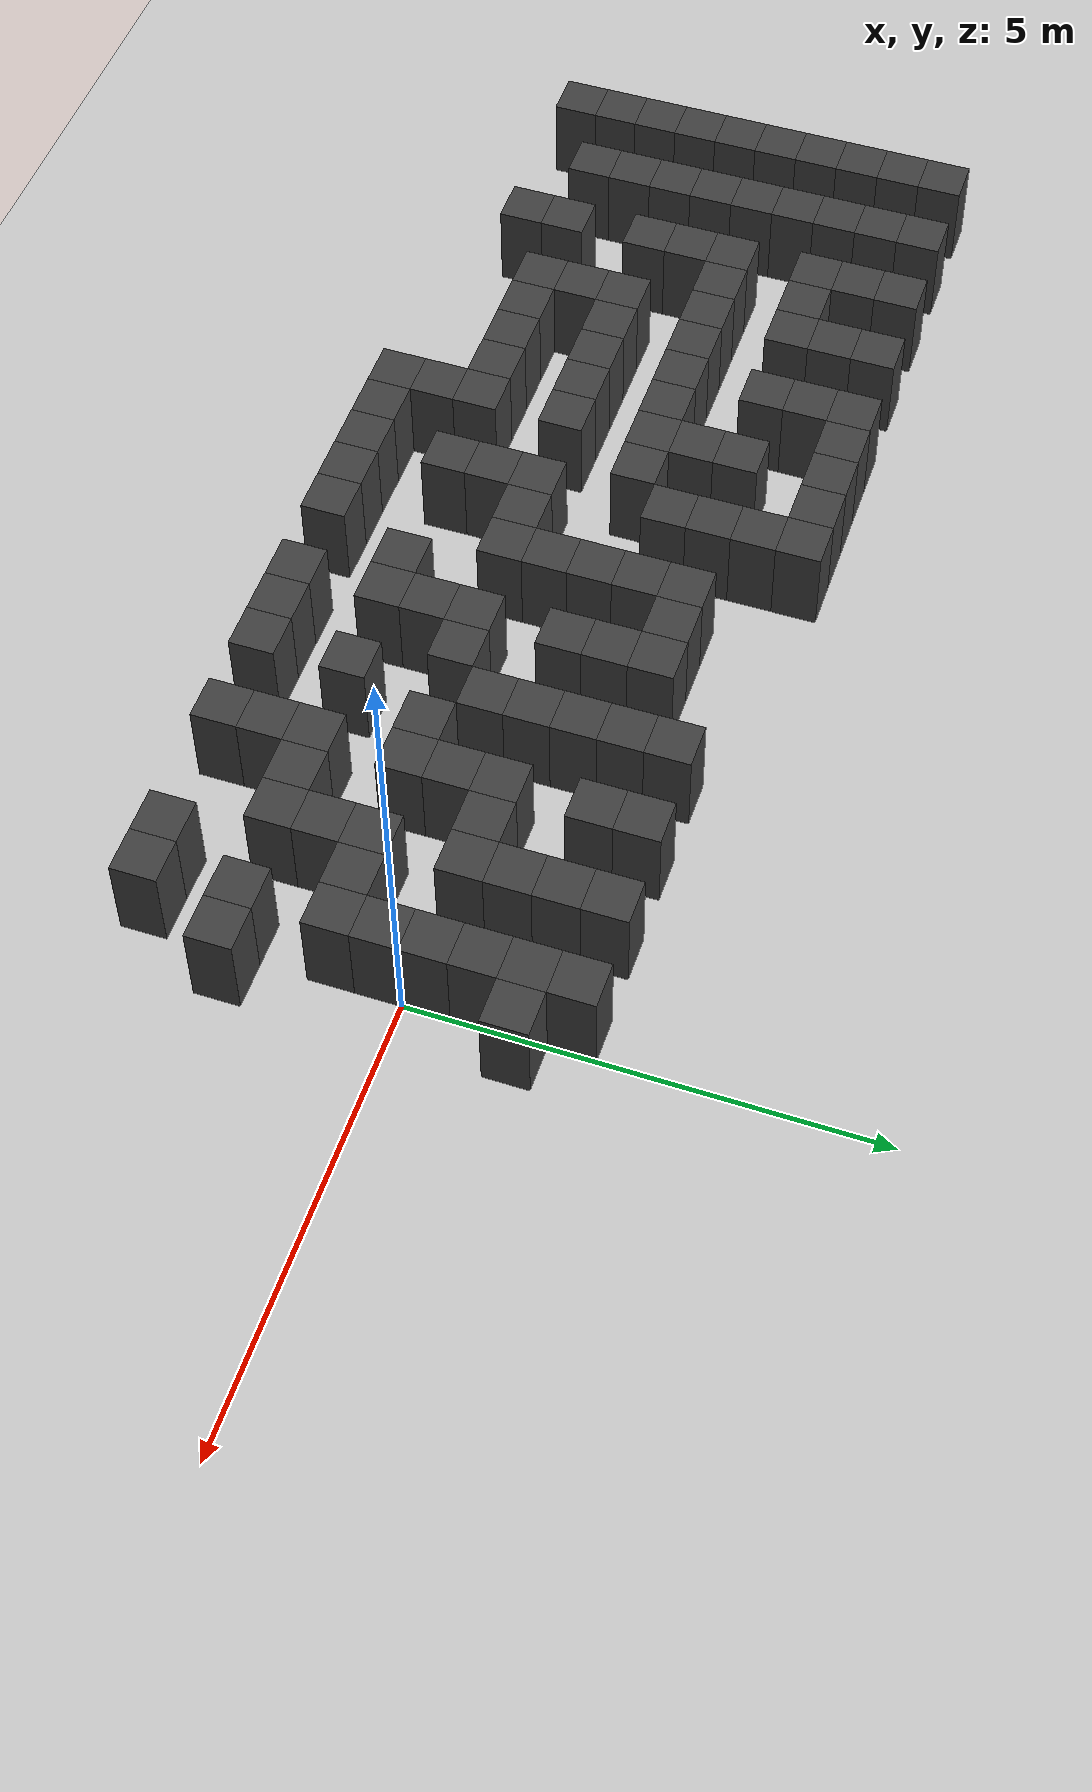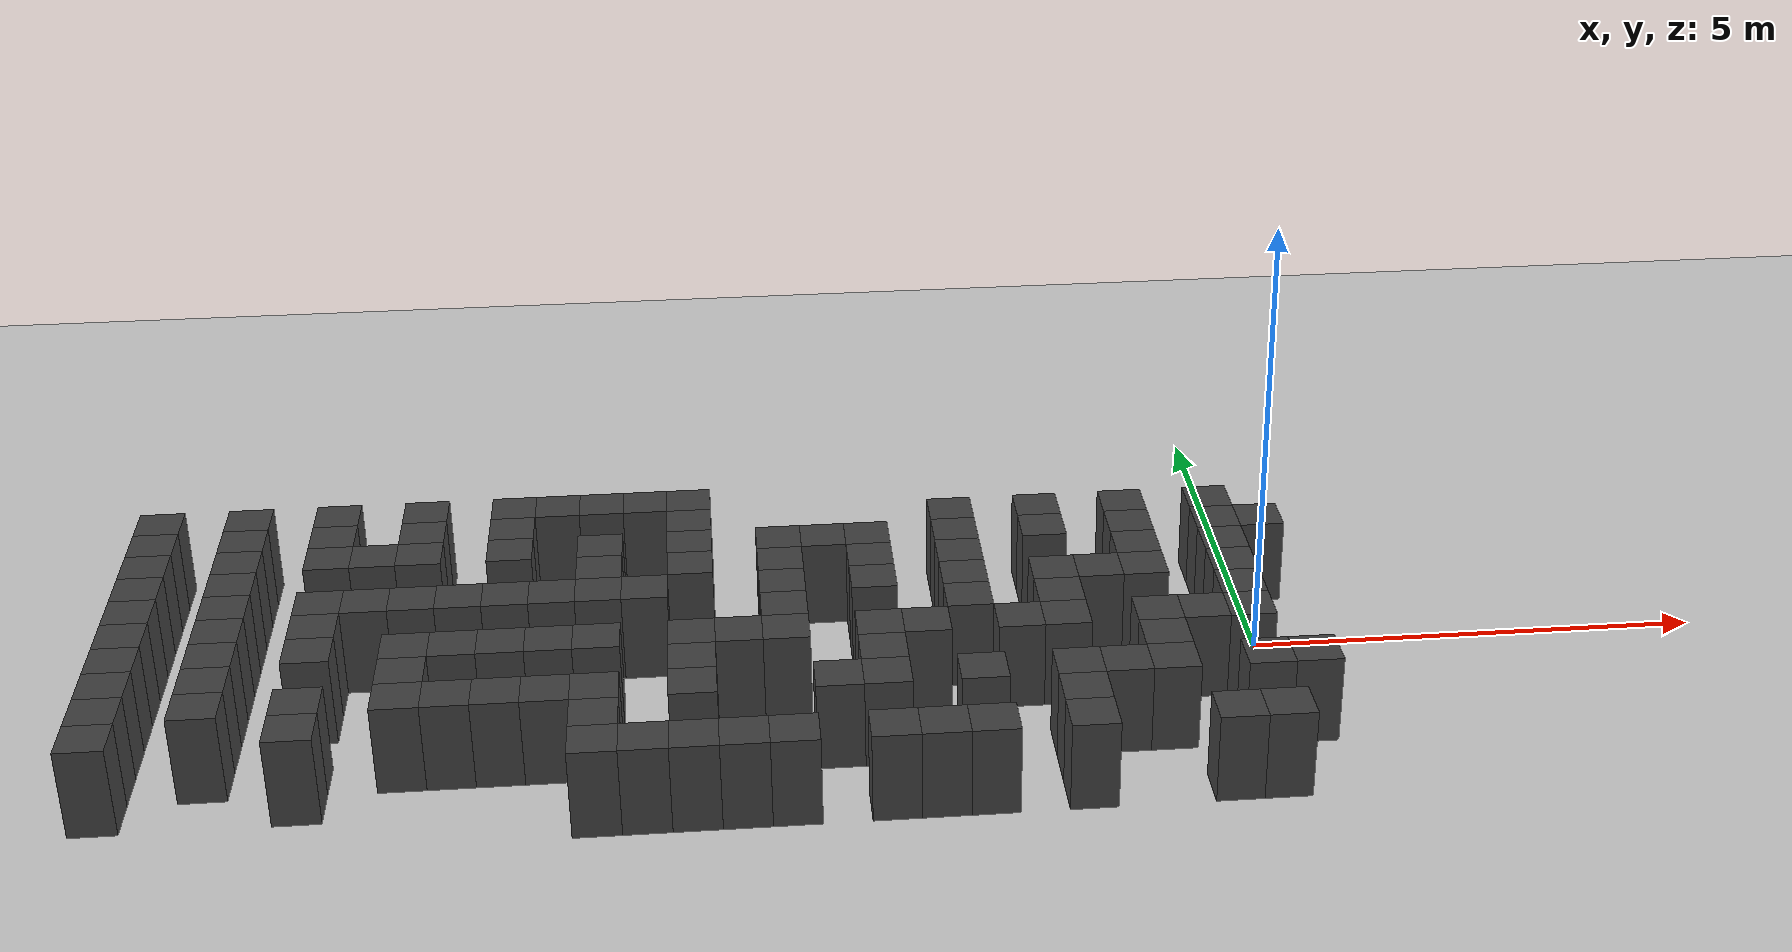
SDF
<sdf version="1.7">
 <world name="map_16588">
  <model name="ground_plane">
   <static>true</static>
   <link name="link">
    <collision name="collision">
     <geometry><plane><normal>0 0 1</normal><size>200 200</size></plane></geometry>
    </collision>
    <visual name="visual">
     <geometry><plane><normal>0 0 1</normal><size>200 200</size></plane></geometry>
     <material><ambient>0.8 0.8 0.8 1</ambient><diffuse>0.8 0.8 0.8 1</diffuse></material>
    </visual>
   </link>
  </model>
  <model name="maze_environment">
   <static>true</static>
   <link name="wall_483">
    <pose>-12.250 2.250 0.500 0 0 0</pose>
    <collision name="col"><geometry><box><size>0.5 0.5 1.0</size></box></geometry></collision>
    <visual name="vis">
     <geometry><box><size>0.5 0.5 1.0</size></box></geometry>
     <material><ambient>0.15 0.15 0.15 1</ambient><diffuse>0.25 0.25 0.25 1</diffuse></material>
    </visual>
   </link>
   <link name="wall_484">
    <pose>-11.250 2.250 0.500 0 0 0</pose>
    <collision name="col"><geometry><box><size>0.5 0.5 1.0</size></box></geometry></collision>
    <visual name="vis">
     <geometry><box><size>0.5 0.5 1.0</size></box></geometry>
     <material><ambient>0.15 0.15 0.15 1</ambient><diffuse>0.25 0.25 0.25 1</diffuse></material>
    </visual>
   </link>
   <link name="wall_485">
    <pose>-10.250 2.250 0.500 0 0 0</pose>
    <collision name="col"><geometry><box><size>0.5 0.5 1.0</size></box></geometry></collision>
    <visual name="vis">
     <geometry><box><size>0.5 0.5 1.0</size></box></geometry>
     <material><ambient>0.15 0.15 0.15 1</ambient><diffuse>0.25 0.25 0.25 1</diffuse></material>
    </visual>
   </link>
   <link name="wall_486">
    <pose>-9.250 2.250 0.500 0 0 0</pose>
    <collision name="col"><geometry><box><size>0.5 0.5 1.0</size></box></geometry></collision>
    <visual name="vis">
     <geometry><box><size>0.5 0.5 1.0</size></box></geometry>
     <material><ambient>0.15 0.15 0.15 1</ambient><diffuse>0.25 0.25 0.25 1</diffuse></material>
    </visual>
   </link>
   <link name="wall_487">
    <pose>-8.250 2.250 0.500 0 0 0</pose>
    <collision name="col"><geometry><box><size>0.5 0.5 1.0</size></box></geometry></collision>
    <visual name="vis">
     <geometry><box><size>0.5 0.5 1.0</size></box></geometry>
     <material><ambient>0.15 0.15 0.15 1</ambient><diffuse>0.25 0.25 0.25 1</diffuse></material>
    </visual>
   </link>
   <link name="wall_488">
    <pose>-7.750 2.250 0.500 0 0 0</pose>
    <collision name="col"><geometry><box><size>0.5 0.5 1.0</size></box></geometry></collision>
    <visual name="vis">
     <geometry><box><size>0.5 0.5 1.0</size></box></geometry>
     <material><ambient>0.15 0.15 0.15 1</ambient><diffuse>0.25 0.25 0.25 1</diffuse></material>
    </visual>
   </link>
   <link name="wall_489">
    <pose>-7.250 2.250 0.500 0 0 0</pose>
    <collision name="col"><geometry><box><size>0.5 0.5 1.0</size></box></geometry></collision>
    <visual name="vis">
     <geometry><box><size>0.5 0.5 1.0</size></box></geometry>
     <material><ambient>0.15 0.15 0.15 1</ambient><diffuse>0.25 0.25 0.25 1</diffuse></material>
    </visual>
   </link>
   <link name="wall_490">
    <pose>-6.750 2.250 0.500 0 0 0</pose>
    <collision name="col"><geometry><box><size>0.5 0.5 1.0</size></box></geometry></collision>
    <visual name="vis">
     <geometry><box><size>0.5 0.5 1.0</size></box></geometry>
     <material><ambient>0.15 0.15 0.15 1</ambient><diffuse>0.25 0.25 0.25 1</diffuse></material>
    </visual>
   </link>
   <link name="wall_491">
    <pose>-6.250 2.250 0.500 0 0 0</pose>
    <collision name="col"><geometry><box><size>0.5 0.5 1.0</size></box></geometry></collision>
    <visual name="vis">
     <geometry><box><size>0.5 0.5 1.0</size></box></geometry>
     <material><ambient>0.15 0.15 0.15 1</ambient><diffuse>0.25 0.25 0.25 1</diffuse></material>
    </visual>
   </link>
   <link name="wall_517">
    <pose>-12.250 1.750 0.500 0 0 0</pose>
    <collision name="col"><geometry><box><size>0.5 0.5 1.0</size></box></geometry></collision>
    <visual name="vis">
     <geometry><box><size>0.5 0.5 1.0</size></box></geometry>
     <material><ambient>0.15 0.15 0.15 1</ambient><diffuse>0.25 0.25 0.25 1</diffuse></material>
    </visual>
   </link>
   <link name="wall_518">
    <pose>-11.250 1.750 0.500 0 0 0</pose>
    <collision name="col"><geometry><box><size>0.5 0.5 1.0</size></box></geometry></collision>
    <visual name="vis">
     <geometry><box><size>0.5 0.5 1.0</size></box></geometry>
     <material><ambient>0.15 0.15 0.15 1</ambient><diffuse>0.25 0.25 0.25 1</diffuse></material>
    </visual>
   </link>
   <link name="wall_519">
    <pose>-10.250 1.750 0.500 0 0 0</pose>
    <collision name="col"><geometry><box><size>0.5 0.5 1.0</size></box></geometry></collision>
    <visual name="vis">
     <geometry><box><size>0.5 0.5 1.0</size></box></geometry>
     <material><ambient>0.15 0.15 0.15 1</ambient><diffuse>0.25 0.25 0.25 1</diffuse></material>
    </visual>
   </link>
   <link name="wall_520">
    <pose>-9.250 1.750 0.500 0 0 0</pose>
    <collision name="col"><geometry><box><size>0.5 0.5 1.0</size></box></geometry></collision>
    <visual name="vis">
     <geometry><box><size>0.5 0.5 1.0</size></box></geometry>
     <material><ambient>0.15 0.15 0.15 1</ambient><diffuse>0.25 0.25 0.25 1</diffuse></material>
    </visual>
   </link>
   <link name="wall_521">
    <pose>-8.250 1.750 0.500 0 0 0</pose>
    <collision name="col"><geometry><box><size>0.5 0.5 1.0</size></box></geometry></collision>
    <visual name="vis">
     <geometry><box><size>0.5 0.5 1.0</size></box></geometry>
     <material><ambient>0.15 0.15 0.15 1</ambient><diffuse>0.25 0.25 0.25 1</diffuse></material>
    </visual>
   </link>
   <link name="wall_522">
    <pose>-6.250 1.750 0.500 0 0 0</pose>
    <collision name="col"><geometry><box><size>0.5 0.5 1.0</size></box></geometry></collision>
    <visual name="vis">
     <geometry><box><size>0.5 0.5 1.0</size></box></geometry>
     <material><ambient>0.15 0.15 0.15 1</ambient><diffuse>0.25 0.25 0.25 1</diffuse></material>
    </visual>
   </link>
   <link name="wall_523">
    <pose>-3.250 1.750 0.500 0 0 0</pose>
    <collision name="col"><geometry><box><size>0.5 0.5 1.0</size></box></geometry></collision>
    <visual name="vis">
     <geometry><box><size>0.5 0.5 1.0</size></box></geometry>
     <material><ambient>0.15 0.15 0.15 1</ambient><diffuse>0.25 0.25 0.25 1</diffuse></material>
    </visual>
   </link>
   <link name="wall_524">
    <pose>-2.250 1.750 0.500 0 0 0</pose>
    <collision name="col"><geometry><box><size>0.5 0.5 1.0</size></box></geometry></collision>
    <visual name="vis">
     <geometry><box><size>0.5 0.5 1.0</size></box></geometry>
     <material><ambient>0.15 0.15 0.15 1</ambient><diffuse>0.25 0.25 0.25 1</diffuse></material>
    </visual>
   </link>
   <link name="wall_525">
    <pose>-1.250 1.750 0.500 0 0 0</pose>
    <collision name="col"><geometry><box><size>0.5 0.5 1.0</size></box></geometry></collision>
    <visual name="vis">
     <geometry><box><size>0.5 0.5 1.0</size></box></geometry>
     <material><ambient>0.15 0.15 0.15 1</ambient><diffuse>0.25 0.25 0.25 1</diffuse></material>
    </visual>
   </link>
   <link name="wall_526">
    <pose>-0.250 1.750 0.500 0 0 0</pose>
    <collision name="col"><geometry><box><size>0.5 0.5 1.0</size></box></geometry></collision>
    <visual name="vis">
     <geometry><box><size>0.5 0.5 1.0</size></box></geometry>
     <material><ambient>0.15 0.15 0.15 1</ambient><diffuse>0.25 0.25 0.25 1</diffuse></material>
    </visual>
   </link>
   <link name="wall_535">
    <pose>-12.250 1.250 0.500 0 0 0</pose>
    <collision name="col"><geometry><box><size>0.5 0.5 1.0</size></box></geometry></collision>
    <visual name="vis">
     <geometry><box><size>0.5 0.5 1.0</size></box></geometry>
     <material><ambient>0.15 0.15 0.15 1</ambient><diffuse>0.25 0.25 0.25 1</diffuse></material>
    </visual>
   </link>
   <link name="wall_536">
    <pose>-11.250 1.250 0.500 0 0 0</pose>
    <collision name="col"><geometry><box><size>0.5 0.5 1.0</size></box></geometry></collision>
    <visual name="vis">
     <geometry><box><size>0.5 0.5 1.0</size></box></geometry>
     <material><ambient>0.15 0.15 0.15 1</ambient><diffuse>0.25 0.25 0.25 1</diffuse></material>
    </visual>
   </link>
   <link name="wall_537">
    <pose>-10.250 1.250 0.500 0 0 0</pose>
    <collision name="col"><geometry><box><size>0.5 0.5 1.0</size></box></geometry></collision>
    <visual name="vis">
     <geometry><box><size>0.5 0.5 1.0</size></box></geometry>
     <material><ambient>0.15 0.15 0.15 1</ambient><diffuse>0.25 0.25 0.25 1</diffuse></material>
    </visual>
   </link>
   <link name="wall_538">
    <pose>-9.750 1.250 0.500 0 0 0</pose>
    <collision name="col"><geometry><box><size>0.5 0.5 1.0</size></box></geometry></collision>
    <visual name="vis">
     <geometry><box><size>0.5 0.5 1.0</size></box></geometry>
     <material><ambient>0.15 0.15 0.15 1</ambient><diffuse>0.25 0.25 0.25 1</diffuse></material>
    </visual>
   </link>
   <link name="wall_539">
    <pose>-9.250 1.250 0.500 0 0 0</pose>
    <collision name="col"><geometry><box><size>0.5 0.5 1.0</size></box></geometry></collision>
    <visual name="vis">
     <geometry><box><size>0.5 0.5 1.0</size></box></geometry>
     <material><ambient>0.15 0.15 0.15 1</ambient><diffuse>0.25 0.25 0.25 1</diffuse></material>
    </visual>
   </link>
   <link name="wall_540">
    <pose>-8.250 1.250 0.500 0 0 0</pose>
    <collision name="col"><geometry><box><size>0.5 0.5 1.0</size></box></geometry></collision>
    <visual name="vis">
     <geometry><box><size>0.5 0.5 1.0</size></box></geometry>
     <material><ambient>0.15 0.15 0.15 1</ambient><diffuse>0.25 0.25 0.25 1</diffuse></material>
    </visual>
   </link>
   <link name="wall_541">
    <pose>-7.250 1.250 0.500 0 0 0</pose>
    <collision name="col"><geometry><box><size>0.5 0.5 1.0</size></box></geometry></collision>
    <visual name="vis">
     <geometry><box><size>0.5 0.5 1.0</size></box></geometry>
     <material><ambient>0.15 0.15 0.15 1</ambient><diffuse>0.25 0.25 0.25 1</diffuse></material>
    </visual>
   </link>
   <link name="wall_542">
    <pose>-6.250 1.250 0.500 0 0 0</pose>
    <collision name="col"><geometry><box><size>0.5 0.5 1.0</size></box></geometry></collision>
    <visual name="vis">
     <geometry><box><size>0.5 0.5 1.0</size></box></geometry>
     <material><ambient>0.15 0.15 0.15 1</ambient><diffuse>0.25 0.25 0.25 1</diffuse></material>
    </visual>
   </link>
   <link name="wall_543">
    <pose>-5.250 1.250 0.500 0 0 0</pose>
    <collision name="col"><geometry><box><size>0.5 0.5 1.0</size></box></geometry></collision>
    <visual name="vis">
     <geometry><box><size>0.5 0.5 1.0</size></box></geometry>
     <material><ambient>0.15 0.15 0.15 1</ambient><diffuse>0.25 0.25 0.25 1</diffuse></material>
    </visual>
   </link>
   <link name="wall_544">
    <pose>-4.750 1.250 0.500 0 0 0</pose>
    <collision name="col"><geometry><box><size>0.5 0.5 1.0</size></box></geometry></collision>
    <visual name="vis">
     <geometry><box><size>0.5 0.5 1.0</size></box></geometry>
     <material><ambient>0.15 0.15 0.15 1</ambient><diffuse>0.25 0.25 0.25 1</diffuse></material>
    </visual>
   </link>
   <link name="wall_545">
    <pose>-4.250 1.250 0.500 0 0 0</pose>
    <collision name="col"><geometry><box><size>0.5 0.5 1.0</size></box></geometry></collision>
    <visual name="vis">
     <geometry><box><size>0.5 0.5 1.0</size></box></geometry>
     <material><ambient>0.15 0.15 0.15 1</ambient><diffuse>0.25 0.25 0.25 1</diffuse></material>
    </visual>
   </link>
   <link name="wall_546">
    <pose>-3.250 1.250 0.500 0 0 0</pose>
    <collision name="col"><geometry><box><size>0.5 0.5 1.0</size></box></geometry></collision>
    <visual name="vis">
     <geometry><box><size>0.5 0.5 1.0</size></box></geometry>
     <material><ambient>0.15 0.15 0.15 1</ambient><diffuse>0.25 0.25 0.25 1</diffuse></material>
    </visual>
   </link>
   <link name="wall_547">
    <pose>-2.250 1.250 0.500 0 0 0</pose>
    <collision name="col"><geometry><box><size>0.5 0.5 1.0</size></box></geometry></collision>
    <visual name="vis">
     <geometry><box><size>0.5 0.5 1.0</size></box></geometry>
     <material><ambient>0.15 0.15 0.15 1</ambient><diffuse>0.25 0.25 0.25 1</diffuse></material>
    </visual>
   </link>
   <link name="wall_548">
    <pose>-1.250 1.250 0.500 0 0 0</pose>
    <collision name="col"><geometry><box><size>0.5 0.5 1.0</size></box></geometry></collision>
    <visual name="vis">
     <geometry><box><size>0.5 0.5 1.0</size></box></geometry>
     <material><ambient>0.15 0.15 0.15 1</ambient><diffuse>0.25 0.25 0.25 1</diffuse></material>
    </visual>
   </link>
   <link name="wall_549">
    <pose>-0.250 1.250 0.500 0 0 0</pose>
    <collision name="col"><geometry><box><size>0.5 0.5 1.0</size></box></geometry></collision>
    <visual name="vis">
     <geometry><box><size>0.5 0.5 1.0</size></box></geometry>
     <material><ambient>0.15 0.15 0.15 1</ambient><diffuse>0.25 0.25 0.25 1</diffuse></material>
    </visual>
   </link>
   <link name="wall_550">
    <pose>0.250 1.250 0.500 0 0 0</pose>
    <collision name="col"><geometry><box><size>0.5 0.5 1.0</size></box></geometry></collision>
    <visual name="vis">
     <geometry><box><size>0.5 0.5 1.0</size></box></geometry>
     <material><ambient>0.15 0.15 0.15 1</ambient><diffuse>0.25 0.25 0.25 1</diffuse></material>
    </visual>
   </link>
   <link name="wall_566">
    <pose>-12.250 0.750 0.500 0 0 0</pose>
    <collision name="col"><geometry><box><size>0.5 0.5 1.0</size></box></geometry></collision>
    <visual name="vis">
     <geometry><box><size>0.5 0.5 1.0</size></box></geometry>
     <material><ambient>0.15 0.15 0.15 1</ambient><diffuse>0.25 0.25 0.25 1</diffuse></material>
    </visual>
   </link>
   <link name="wall_567">
    <pose>-11.250 0.750 0.500 0 0 0</pose>
    <collision name="col"><geometry><box><size>0.5 0.5 1.0</size></box></geometry></collision>
    <visual name="vis">
     <geometry><box><size>0.5 0.5 1.0</size></box></geometry>
     <material><ambient>0.15 0.15 0.15 1</ambient><diffuse>0.25 0.25 0.25 1</diffuse></material>
    </visual>
   </link>
   <link name="wall_568">
    <pose>-7.250 0.750 0.500 0 0 0</pose>
    <collision name="col"><geometry><box><size>0.5 0.5 1.0</size></box></geometry></collision>
    <visual name="vis">
     <geometry><box><size>0.5 0.5 1.0</size></box></geometry>
     <material><ambient>0.15 0.15 0.15 1</ambient><diffuse>0.25 0.25 0.25 1</diffuse></material>
    </visual>
   </link>
   <link name="wall_569">
    <pose>-6.250 0.750 0.500 0 0 0</pose>
    <collision name="col"><geometry><box><size>0.5 0.5 1.0</size></box></geometry></collision>
    <visual name="vis">
     <geometry><box><size>0.5 0.5 1.0</size></box></geometry>
     <material><ambient>0.15 0.15 0.15 1</ambient><diffuse>0.25 0.25 0.25 1</diffuse></material>
    </visual>
   </link>
   <link name="wall_570">
    <pose>-5.250 0.750 0.500 0 0 0</pose>
    <collision name="col"><geometry><box><size>0.5 0.5 1.0</size></box></geometry></collision>
    <visual name="vis">
     <geometry><box><size>0.5 0.5 1.0</size></box></geometry>
     <material><ambient>0.15 0.15 0.15 1</ambient><diffuse>0.25 0.25 0.25 1</diffuse></material>
    </visual>
   </link>
   <link name="wall_571">
    <pose>-4.250 0.750 0.500 0 0 0</pose>
    <collision name="col"><geometry><box><size>0.5 0.5 1.0</size></box></geometry></collision>
    <visual name="vis">
     <geometry><box><size>0.5 0.5 1.0</size></box></geometry>
     <material><ambient>0.15 0.15 0.15 1</ambient><diffuse>0.25 0.25 0.25 1</diffuse></material>
    </visual>
   </link>
   <link name="wall_572">
    <pose>-3.250 0.750 0.500 0 0 0</pose>
    <collision name="col"><geometry><box><size>0.5 0.5 1.0</size></box></geometry></collision>
    <visual name="vis">
     <geometry><box><size>0.5 0.5 1.0</size></box></geometry>
     <material><ambient>0.15 0.15 0.15 1</ambient><diffuse>0.25 0.25 0.25 1</diffuse></material>
    </visual>
   </link>
   <link name="wall_573">
    <pose>-1.250 0.750 0.500 0 0 0</pose>
    <collision name="col"><geometry><box><size>0.5 0.5 1.0</size></box></geometry></collision>
    <visual name="vis">
     <geometry><box><size>0.5 0.5 1.0</size></box></geometry>
     <material><ambient>0.15 0.15 0.15 1</ambient><diffuse>0.25 0.25 0.25 1</diffuse></material>
    </visual>
   </link>
   <link name="wall_574">
    <pose>-0.250 0.750 0.500 0 0 0</pose>
    <collision name="col"><geometry><box><size>0.5 0.5 1.0</size></box></geometry></collision>
    <visual name="vis">
     <geometry><box><size>0.5 0.5 1.0</size></box></geometry>
     <material><ambient>0.15 0.15 0.15 1</ambient><diffuse>0.25 0.25 0.25 1</diffuse></material>
    </visual>
   </link>
   <link name="wall_584">
    <pose>-12.250 0.250 0.500 0 0 0</pose>
    <collision name="col"><geometry><box><size>0.5 0.5 1.0</size></box></geometry></collision>
    <visual name="vis">
     <geometry><box><size>0.5 0.5 1.0</size></box></geometry>
     <material><ambient>0.15 0.15 0.15 1</ambient><diffuse>0.25 0.25 0.25 1</diffuse></material>
    </visual>
   </link>
   <link name="wall_585">
    <pose>-11.250 0.250 0.500 0 0 0</pose>
    <collision name="col"><geometry><box><size>0.5 0.5 1.0</size></box></geometry></collision>
    <visual name="vis">
     <geometry><box><size>0.5 0.5 1.0</size></box></geometry>
     <material><ambient>0.15 0.15 0.15 1</ambient><diffuse>0.25 0.25 0.25 1</diffuse></material>
    </visual>
   </link>
   <link name="wall_586">
    <pose>-10.250 0.250 0.500 0 0 0</pose>
    <collision name="col"><geometry><box><size>0.5 0.5 1.0</size></box></geometry></collision>
    <visual name="vis">
     <geometry><box><size>0.5 0.5 1.0</size></box></geometry>
     <material><ambient>0.15 0.15 0.15 1</ambient><diffuse>0.25 0.25 0.25 1</diffuse></material>
    </visual>
   </link>
   <link name="wall_587">
    <pose>-9.750 0.250 0.500 0 0 0</pose>
    <collision name="col"><geometry><box><size>0.5 0.5 1.0</size></box></geometry></collision>
    <visual name="vis">
     <geometry><box><size>0.5 0.5 1.0</size></box></geometry>
     <material><ambient>0.15 0.15 0.15 1</ambient><diffuse>0.25 0.25 0.25 1</diffuse></material>
    </visual>
   </link>
   <link name="wall_588">
    <pose>-9.250 0.250 0.500 0 0 0</pose>
    <collision name="col"><geometry><box><size>0.5 0.5 1.0</size></box></geometry></collision>
    <visual name="vis">
     <geometry><box><size>0.5 0.5 1.0</size></box></geometry>
     <material><ambient>0.15 0.15 0.15 1</ambient><diffuse>0.25 0.25 0.25 1</diffuse></material>
    </visual>
   </link>
   <link name="wall_589">
    <pose>-8.750 0.250 0.500 0 0 0</pose>
    <collision name="col"><geometry><box><size>0.5 0.5 1.0</size></box></geometry></collision>
    <visual name="vis">
     <geometry><box><size>0.5 0.5 1.0</size></box></geometry>
     <material><ambient>0.15 0.15 0.15 1</ambient><diffuse>0.25 0.25 0.25 1</diffuse></material>
    </visual>
   </link>
   <link name="wall_590">
    <pose>-8.250 0.250 0.500 0 0 0</pose>
    <collision name="col"><geometry><box><size>0.5 0.5 1.0</size></box></geometry></collision>
    <visual name="vis">
     <geometry><box><size>0.5 0.5 1.0</size></box></geometry>
     <material><ambient>0.15 0.15 0.15 1</ambient><diffuse>0.25 0.25 0.25 1</diffuse></material>
    </visual>
   </link>
   <link name="wall_591">
    <pose>-7.750 0.250 0.500 0 0 0</pose>
    <collision name="col"><geometry><box><size>0.5 0.5 1.0</size></box></geometry></collision>
    <visual name="vis">
     <geometry><box><size>0.5 0.5 1.0</size></box></geometry>
     <material><ambient>0.15 0.15 0.15 1</ambient><diffuse>0.25 0.25 0.25 1</diffuse></material>
    </visual>
   </link>
   <link name="wall_592">
    <pose>-7.250 0.250 0.500 0 0 0</pose>
    <collision name="col"><geometry><box><size>0.5 0.5 1.0</size></box></geometry></collision>
    <visual name="vis">
     <geometry><box><size>0.5 0.5 1.0</size></box></geometry>
     <material><ambient>0.15 0.15 0.15 1</ambient><diffuse>0.25 0.25 0.25 1</diffuse></material>
    </visual>
   </link>
   <link name="wall_593">
    <pose>-6.750 0.250 0.500 0 0 0</pose>
    <collision name="col"><geometry><box><size>0.5 0.5 1.0</size></box></geometry></collision>
    <visual name="vis">
     <geometry><box><size>0.5 0.5 1.0</size></box></geometry>
     <material><ambient>0.15 0.15 0.15 1</ambient><diffuse>0.25 0.25 0.25 1</diffuse></material>
    </visual>
   </link>
   <link name="wall_594">
    <pose>-5.250 0.250 0.500 0 0 0</pose>
    <collision name="col"><geometry><box><size>0.5 0.5 1.0</size></box></geometry></collision>
    <visual name="vis">
     <geometry><box><size>0.5 0.5 1.0</size></box></geometry>
     <material><ambient>0.15 0.15 0.15 1</ambient><diffuse>0.25 0.25 0.25 1</diffuse></material>
    </visual>
   </link>
   <link name="wall_595">
    <pose>-4.250 0.250 0.500 0 0 0</pose>
    <collision name="col"><geometry><box><size>0.5 0.5 1.0</size></box></geometry></collision>
    <visual name="vis">
     <geometry><box><size>0.5 0.5 1.0</size></box></geometry>
     <material><ambient>0.15 0.15 0.15 1</ambient><diffuse>0.25 0.25 0.25 1</diffuse></material>
    </visual>
   </link>
   <link name="wall_596">
    <pose>-3.250 0.250 0.500 0 0 0</pose>
    <collision name="col"><geometry><box><size>0.5 0.5 1.0</size></box></geometry></collision>
    <visual name="vis">
     <geometry><box><size>0.5 0.5 1.0</size></box></geometry>
     <material><ambient>0.15 0.15 0.15 1</ambient><diffuse>0.25 0.25 0.25 1</diffuse></material>
    </visual>
   </link>
   <link name="wall_597">
    <pose>-2.250 0.250 0.500 0 0 0</pose>
    <collision name="col"><geometry><box><size>0.5 0.5 1.0</size></box></geometry></collision>
    <visual name="vis">
     <geometry><box><size>0.5 0.5 1.0</size></box></geometry>
     <material><ambient>0.15 0.15 0.15 1</ambient><diffuse>0.25 0.25 0.25 1</diffuse></material>
    </visual>
   </link>
   <link name="wall_598">
    <pose>-1.750 0.250 0.500 0 0 0</pose>
    <collision name="col"><geometry><box><size>0.5 0.5 1.0</size></box></geometry></collision>
    <visual name="vis">
     <geometry><box><size>0.5 0.5 1.0</size></box></geometry>
     <material><ambient>0.15 0.15 0.15 1</ambient><diffuse>0.25 0.25 0.25 1</diffuse></material>
    </visual>
   </link>
   <link name="wall_599">
    <pose>-1.250 0.250 0.500 0 0 0</pose>
    <collision name="col"><geometry><box><size>0.5 0.5 1.0</size></box></geometry></collision>
    <visual name="vis">
     <geometry><box><size>0.5 0.5 1.0</size></box></geometry>
     <material><ambient>0.15 0.15 0.15 1</ambient><diffuse>0.25 0.25 0.25 1</diffuse></material>
    </visual>
   </link>
   <link name="wall_600">
    <pose>-0.250 0.250 0.500 0 0 0</pose>
    <collision name="col"><geometry><box><size>0.5 0.5 1.0</size></box></geometry></collision>
    <visual name="vis">
     <geometry><box><size>0.5 0.5 1.0</size></box></geometry>
     <material><ambient>0.15 0.15 0.15 1</ambient><diffuse>0.25 0.25 0.25 1</diffuse></material>
    </visual>
   </link>
   <link name="wall_616">
    <pose>-12.250 -0.250 0.500 0 0 0</pose>
    <collision name="col"><geometry><box><size>0.5 0.5 1.0</size></box></geometry></collision>
    <visual name="vis">
     <geometry><box><size>0.5 0.5 1.0</size></box></geometry>
     <material><ambient>0.15 0.15 0.15 1</ambient><diffuse>0.25 0.25 0.25 1</diffuse></material>
    </visual>
   </link>
   <link name="wall_617">
    <pose>-11.250 -0.250 0.500 0 0 0</pose>
    <collision name="col"><geometry><box><size>0.5 0.5 1.0</size></box></geometry></collision>
    <visual name="vis">
     <geometry><box><size>0.5 0.5 1.0</size></box></geometry>
     <material><ambient>0.15 0.15 0.15 1</ambient><diffuse>0.25 0.25 0.25 1</diffuse></material>
    </visual>
   </link>
   <link name="wall_618">
    <pose>-10.250 -0.250 0.500 0 0 0</pose>
    <collision name="col"><geometry><box><size>0.5 0.5 1.0</size></box></geometry></collision>
    <visual name="vis">
     <geometry><box><size>0.5 0.5 1.0</size></box></geometry>
     <material><ambient>0.15 0.15 0.15 1</ambient><diffuse>0.25 0.25 0.25 1</diffuse></material>
    </visual>
   </link>
   <link name="wall_619">
    <pose>-5.250 -0.250 0.500 0 0 0</pose>
    <collision name="col"><geometry><box><size>0.5 0.5 1.0</size></box></geometry></collision>
    <visual name="vis">
     <geometry><box><size>0.5 0.5 1.0</size></box></geometry>
     <material><ambient>0.15 0.15 0.15 1</ambient><diffuse>0.25 0.25 0.25 1</diffuse></material>
    </visual>
   </link>
   <link name="wall_620">
    <pose>-3.250 -0.250 0.500 0 0 0</pose>
    <collision name="col"><geometry><box><size>0.5 0.5 1.0</size></box></geometry></collision>
    <visual name="vis">
     <geometry><box><size>0.5 0.5 1.0</size></box></geometry>
     <material><ambient>0.15 0.15 0.15 1</ambient><diffuse>0.25 0.25 0.25 1</diffuse></material>
    </visual>
   </link>
   <link name="wall_621">
    <pose>-2.250 -0.250 0.500 0 0 0</pose>
    <collision name="col"><geometry><box><size>0.5 0.5 1.0</size></box></geometry></collision>
    <visual name="vis">
     <geometry><box><size>0.5 0.5 1.0</size></box></geometry>
     <material><ambient>0.15 0.15 0.15 1</ambient><diffuse>0.25 0.25 0.25 1</diffuse></material>
    </visual>
   </link>
   <link name="wall_622">
    <pose>-0.250 -0.250 0.500 0 0 0</pose>
    <collision name="col"><geometry><box><size>0.5 0.5 1.0</size></box></geometry></collision>
    <visual name="vis">
     <geometry><box><size>0.5 0.5 1.0</size></box></geometry>
     <material><ambient>0.15 0.15 0.15 1</ambient><diffuse>0.25 0.25 0.25 1</diffuse></material>
    </visual>
   </link>
   <link name="wall_631">
    <pose>-12.250 -0.750 0.500 0 0 0</pose>
    <collision name="col"><geometry><box><size>0.5 0.5 1.0</size></box></geometry></collision>
    <visual name="vis">
     <geometry><box><size>0.5 0.5 1.0</size></box></geometry>
     <material><ambient>0.15 0.15 0.15 1</ambient><diffuse>0.25 0.25 0.25 1</diffuse></material>
    </visual>
   </link>
   <link name="wall_632">
    <pose>-11.250 -0.750 0.500 0 0 0</pose>
    <collision name="col"><geometry><box><size>0.5 0.5 1.0</size></box></geometry></collision>
    <visual name="vis">
     <geometry><box><size>0.5 0.5 1.0</size></box></geometry>
     <material><ambient>0.15 0.15 0.15 1</ambient><diffuse>0.25 0.25 0.25 1</diffuse></material>
    </visual>
   </link>
   <link name="wall_633">
    <pose>-10.250 -0.750 0.500 0 0 0</pose>
    <collision name="col"><geometry><box><size>0.5 0.5 1.0</size></box></geometry></collision>
    <visual name="vis">
     <geometry><box><size>0.5 0.5 1.0</size></box></geometry>
     <material><ambient>0.15 0.15 0.15 1</ambient><diffuse>0.25 0.25 0.25 1</diffuse></material>
    </visual>
   </link>
   <link name="wall_634">
    <pose>-9.250 -0.750 0.500 0 0 0</pose>
    <collision name="col"><geometry><box><size>0.5 0.5 1.0</size></box></geometry></collision>
    <visual name="vis">
     <geometry><box><size>0.5 0.5 1.0</size></box></geometry>
     <material><ambient>0.15 0.15 0.15 1</ambient><diffuse>0.25 0.25 0.25 1</diffuse></material>
    </visual>
   </link>
   <link name="wall_635">
    <pose>-8.750 -0.750 0.500 0 0 0</pose>
    <collision name="col"><geometry><box><size>0.5 0.5 1.0</size></box></geometry></collision>
    <visual name="vis">
     <geometry><box><size>0.5 0.5 1.0</size></box></geometry>
     <material><ambient>0.15 0.15 0.15 1</ambient><diffuse>0.25 0.25 0.25 1</diffuse></material>
    </visual>
   </link>
   <link name="wall_636">
    <pose>-8.250 -0.750 0.500 0 0 0</pose>
    <collision name="col"><geometry><box><size>0.5 0.5 1.0</size></box></geometry></collision>
    <visual name="vis">
     <geometry><box><size>0.5 0.5 1.0</size></box></geometry>
     <material><ambient>0.15 0.15 0.15 1</ambient><diffuse>0.25 0.25 0.25 1</diffuse></material>
    </visual>
   </link>
   <link name="wall_637">
    <pose>-7.750 -0.750 0.500 0 0 0</pose>
    <collision name="col"><geometry><box><size>0.5 0.5 1.0</size></box></geometry></collision>
    <visual name="vis">
     <geometry><box><size>0.5 0.5 1.0</size></box></geometry>
     <material><ambient>0.15 0.15 0.15 1</ambient><diffuse>0.25 0.25 0.25 1</diffuse></material>
    </visual>
   </link>
   <link name="wall_638">
    <pose>-7.250 -0.750 0.500 0 0 0</pose>
    <collision name="col"><geometry><box><size>0.5 0.5 1.0</size></box></geometry></collision>
    <visual name="vis">
     <geometry><box><size>0.5 0.5 1.0</size></box></geometry>
     <material><ambient>0.15 0.15 0.15 1</ambient><diffuse>0.25 0.25 0.25 1</diffuse></material>
    </visual>
   </link>
   <link name="wall_639">
    <pose>-6.250 -0.750 0.500 0 0 0</pose>
    <collision name="col"><geometry><box><size>0.5 0.5 1.0</size></box></geometry></collision>
    <visual name="vis">
     <geometry><box><size>0.5 0.5 1.0</size></box></geometry>
     <material><ambient>0.15 0.15 0.15 1</ambient><diffuse>0.25 0.25 0.25 1</diffuse></material>
    </visual>
   </link>
   <link name="wall_640">
    <pose>-5.750 -0.750 0.500 0 0 0</pose>
    <collision name="col"><geometry><box><size>0.5 0.5 1.0</size></box></geometry></collision>
    <visual name="vis">
     <geometry><box><size>0.5 0.5 1.0</size></box></geometry>
     <material><ambient>0.15 0.15 0.15 1</ambient><diffuse>0.25 0.25 0.25 1</diffuse></material>
    </visual>
   </link>
   <link name="wall_641">
    <pose>-5.250 -0.750 0.500 0 0 0</pose>
    <collision name="col"><geometry><box><size>0.5 0.5 1.0</size></box></geometry></collision>
    <visual name="vis">
     <geometry><box><size>0.5 0.5 1.0</size></box></geometry>
     <material><ambient>0.15 0.15 0.15 1</ambient><diffuse>0.25 0.25 0.25 1</diffuse></material>
    </visual>
   </link>
   <link name="wall_642">
    <pose>-4.250 -0.750 0.500 0 0 0</pose>
    <collision name="col"><geometry><box><size>0.5 0.5 1.0</size></box></geometry></collision>
    <visual name="vis">
     <geometry><box><size>0.5 0.5 1.0</size></box></geometry>
     <material><ambient>0.15 0.15 0.15 1</ambient><diffuse>0.25 0.25 0.25 1</diffuse></material>
    </visual>
   </link>
   <link name="wall_643">
    <pose>-3.750 -0.750 0.500 0 0 0</pose>
    <collision name="col"><geometry><box><size>0.5 0.5 1.0</size></box></geometry></collision>
    <visual name="vis">
     <geometry><box><size>0.5 0.5 1.0</size></box></geometry>
     <material><ambient>0.15 0.15 0.15 1</ambient><diffuse>0.25 0.25 0.25 1</diffuse></material>
    </visual>
   </link>
   <link name="wall_644">
    <pose>-2.750 -0.750 0.500 0 0 0</pose>
    <collision name="col"><geometry><box><size>0.5 0.5 1.0</size></box></geometry></collision>
    <visual name="vis">
     <geometry><box><size>0.5 0.5 1.0</size></box></geometry>
     <material><ambient>0.15 0.15 0.15 1</ambient><diffuse>0.25 0.25 0.25 1</diffuse></material>
    </visual>
   </link>
   <link name="wall_645">
    <pose>-2.250 -0.750 0.500 0 0 0</pose>
    <collision name="col"><geometry><box><size>0.5 0.5 1.0</size></box></geometry></collision>
    <visual name="vis">
     <geometry><box><size>0.5 0.5 1.0</size></box></geometry>
     <material><ambient>0.15 0.15 0.15 1</ambient><diffuse>0.25 0.25 0.25 1</diffuse></material>
    </visual>
   </link>
   <link name="wall_646">
    <pose>-1.250 -0.750 0.500 0 0 0</pose>
    <collision name="col"><geometry><box><size>0.5 0.5 1.0</size></box></geometry></collision>
    <visual name="vis">
     <geometry><box><size>0.5 0.5 1.0</size></box></geometry>
     <material><ambient>0.15 0.15 0.15 1</ambient><diffuse>0.25 0.25 0.25 1</diffuse></material>
    </visual>
   </link>
   <link name="wall_647">
    <pose>-0.750 -0.750 0.500 0 0 0</pose>
    <collision name="col"><geometry><box><size>0.5 0.5 1.0</size></box></geometry></collision>
    <visual name="vis">
     <geometry><box><size>0.5 0.5 1.0</size></box></geometry>
     <material><ambient>0.15 0.15 0.15 1</ambient><diffuse>0.25 0.25 0.25 1</diffuse></material>
    </visual>
   </link>
   <link name="wall_648">
    <pose>-0.250 -0.750 0.500 0 0 0</pose>
    <collision name="col"><geometry><box><size>0.5 0.5 1.0</size></box></geometry></collision>
    <visual name="vis">
     <geometry><box><size>0.5 0.5 1.0</size></box></geometry>
     <material><ambient>0.15 0.15 0.15 1</ambient><diffuse>0.25 0.25 0.25 1</diffuse></material>
    </visual>
   </link>
   <link name="wall_667">
    <pose>-12.250 -1.250 0.500 0 0 0</pose>
    <collision name="col"><geometry><box><size>0.5 0.5 1.0</size></box></geometry></collision>
    <visual name="vis">
     <geometry><box><size>0.5 0.5 1.0</size></box></geometry>
     <material><ambient>0.15 0.15 0.15 1</ambient><diffuse>0.25 0.25 0.25 1</diffuse></material>
    </visual>
   </link>
   <link name="wall_668">
    <pose>-11.250 -1.250 0.500 0 0 0</pose>
    <collision name="col"><geometry><box><size>0.5 0.5 1.0</size></box></geometry></collision>
    <visual name="vis">
     <geometry><box><size>0.5 0.5 1.0</size></box></geometry>
     <material><ambient>0.15 0.15 0.15 1</ambient><diffuse>0.25 0.25 0.25 1</diffuse></material>
    </visual>
   </link>
   <link name="wall_669">
    <pose>-9.250 -1.250 0.500 0 0 0</pose>
    <collision name="col"><geometry><box><size>0.5 0.5 1.0</size></box></geometry></collision>
    <visual name="vis">
     <geometry><box><size>0.5 0.5 1.0</size></box></geometry>
     <material><ambient>0.15 0.15 0.15 1</ambient><diffuse>0.25 0.25 0.25 1</diffuse></material>
    </visual>
   </link>
   <link name="wall_670">
    <pose>-6.250 -1.250 0.500 0 0 0</pose>
    <collision name="col"><geometry><box><size>0.5 0.5 1.0</size></box></geometry></collision>
    <visual name="vis">
     <geometry><box><size>0.5 0.5 1.0</size></box></geometry>
     <material><ambient>0.15 0.15 0.15 1</ambient><diffuse>0.25 0.25 0.25 1</diffuse></material>
    </visual>
   </link>
   <link name="wall_671">
    <pose>-4.250 -1.250 0.500 0 0 0</pose>
    <collision name="col"><geometry><box><size>0.5 0.5 1.0</size></box></geometry></collision>
    <visual name="vis">
     <geometry><box><size>0.5 0.5 1.0</size></box></geometry>
     <material><ambient>0.15 0.15 0.15 1</ambient><diffuse>0.25 0.25 0.25 1</diffuse></material>
    </visual>
   </link>
   <link name="wall_672">
    <pose>-1.250 -1.250 0.500 0 0 0</pose>
    <collision name="col"><geometry><box><size>0.5 0.5 1.0</size></box></geometry></collision>
    <visual name="vis">
     <geometry><box><size>0.5 0.5 1.0</size></box></geometry>
     <material><ambient>0.15 0.15 0.15 1</ambient><diffuse>0.25 0.25 0.25 1</diffuse></material>
    </visual>
   </link>
   <link name="wall_678">
    <pose>-12.250 -1.750 0.500 0 0 0</pose>
    <collision name="col"><geometry><box><size>0.5 0.5 1.0</size></box></geometry></collision>
    <visual name="vis">
     <geometry><box><size>0.5 0.5 1.0</size></box></geometry>
     <material><ambient>0.15 0.15 0.15 1</ambient><diffuse>0.25 0.25 0.25 1</diffuse></material>
    </visual>
   </link>
   <link name="wall_679">
    <pose>-11.250 -1.750 0.500 0 0 0</pose>
    <collision name="col"><geometry><box><size>0.5 0.5 1.0</size></box></geometry></collision>
    <visual name="vis">
     <geometry><box><size>0.5 0.5 1.0</size></box></geometry>
     <material><ambient>0.15 0.15 0.15 1</ambient><diffuse>0.25 0.25 0.25 1</diffuse></material>
    </visual>
   </link>
   <link name="wall_680">
    <pose>-10.250 -1.750 0.500 0 0 0</pose>
    <collision name="col"><geometry><box><size>0.5 0.5 1.0</size></box></geometry></collision>
    <visual name="vis">
     <geometry><box><size>0.5 0.5 1.0</size></box></geometry>
     <material><ambient>0.15 0.15 0.15 1</ambient><diffuse>0.25 0.25 0.25 1</diffuse></material>
    </visual>
   </link>
   <link name="wall_681">
    <pose>-9.250 -1.750 0.500 0 0 0</pose>
    <collision name="col"><geometry><box><size>0.5 0.5 1.0</size></box></geometry></collision>
    <visual name="vis">
     <geometry><box><size>0.5 0.5 1.0</size></box></geometry>
     <material><ambient>0.15 0.15 0.15 1</ambient><diffuse>0.25 0.25 0.25 1</diffuse></material>
    </visual>
   </link>
   <link name="wall_682">
    <pose>-8.750 -1.750 0.500 0 0 0</pose>
    <collision name="col"><geometry><box><size>0.5 0.5 1.0</size></box></geometry></collision>
    <visual name="vis">
     <geometry><box><size>0.5 0.5 1.0</size></box></geometry>
     <material><ambient>0.15 0.15 0.15 1</ambient><diffuse>0.25 0.25 0.25 1</diffuse></material>
    </visual>
   </link>
   <link name="wall_683">
    <pose>-8.250 -1.750 0.500 0 0 0</pose>
    <collision name="col"><geometry><box><size>0.5 0.5 1.0</size></box></geometry></collision>
    <visual name="vis">
     <geometry><box><size>0.5 0.5 1.0</size></box></geometry>
     <material><ambient>0.15 0.15 0.15 1</ambient><diffuse>0.25 0.25 0.25 1</diffuse></material>
    </visual>
   </link>
   <link name="wall_684">
    <pose>-7.750 -1.750 0.500 0 0 0</pose>
    <collision name="col"><geometry><box><size>0.5 0.5 1.0</size></box></geometry></collision>
    <visual name="vis">
     <geometry><box><size>0.5 0.5 1.0</size></box></geometry>
     <material><ambient>0.15 0.15 0.15 1</ambient><diffuse>0.25 0.25 0.25 1</diffuse></material>
    </visual>
   </link>
   <link name="wall_685">
    <pose>-7.250 -1.750 0.500 0 0 0</pose>
    <collision name="col"><geometry><box><size>0.5 0.5 1.0</size></box></geometry></collision>
    <visual name="vis">
     <geometry><box><size>0.5 0.5 1.0</size></box></geometry>
     <material><ambient>0.15 0.15 0.15 1</ambient><diffuse>0.25 0.25 0.25 1</diffuse></material>
    </visual>
   </link>
   <link name="wall_686">
    <pose>-6.250 -1.750 0.500 0 0 0</pose>
    <collision name="col"><geometry><box><size>0.5 0.5 1.0</size></box></geometry></collision>
    <visual name="vis">
     <geometry><box><size>0.5 0.5 1.0</size></box></geometry>
     <material><ambient>0.15 0.15 0.15 1</ambient><diffuse>0.25 0.25 0.25 1</diffuse></material>
    </visual>
   </link>
   <link name="wall_687">
    <pose>-4.750 -1.750 0.500 0 0 0</pose>
    <collision name="col"><geometry><box><size>0.5 0.5 1.0</size></box></geometry></collision>
    <visual name="vis">
     <geometry><box><size>0.5 0.5 1.0</size></box></geometry>
     <material><ambient>0.15 0.15 0.15 1</ambient><diffuse>0.25 0.25 0.25 1</diffuse></material>
    </visual>
   </link>
   <link name="wall_688">
    <pose>-4.250 -1.750 0.500 0 0 0</pose>
    <collision name="col"><geometry><box><size>0.5 0.5 1.0</size></box></geometry></collision>
    <visual name="vis">
     <geometry><box><size>0.5 0.5 1.0</size></box></geometry>
     <material><ambient>0.15 0.15 0.15 1</ambient><diffuse>0.25 0.25 0.25 1</diffuse></material>
    </visual>
   </link>
   <link name="wall_689">
    <pose>-3.250 -1.750 0.500 0 0 0</pose>
    <collision name="col"><geometry><box><size>0.5 0.5 1.0</size></box></geometry></collision>
    <visual name="vis">
     <geometry><box><size>0.5 0.5 1.0</size></box></geometry>
     <material><ambient>0.15 0.15 0.15 1</ambient><diffuse>0.25 0.25 0.25 1</diffuse></material>
    </visual>
   </link>
   <link name="wall_690">
    <pose>-2.250 -1.750 0.500 0 0 0</pose>
    <collision name="col"><geometry><box><size>0.5 0.5 1.0</size></box></geometry></collision>
    <visual name="vis">
     <geometry><box><size>0.5 0.5 1.0</size></box></geometry>
     <material><ambient>0.15 0.15 0.15 1</ambient><diffuse>0.25 0.25 0.25 1</diffuse></material>
    </visual>
   </link>
   <link name="wall_691">
    <pose>-1.750 -1.750 0.500 0 0 0</pose>
    <collision name="col"><geometry><box><size>0.5 0.5 1.0</size></box></geometry></collision>
    <visual name="vis">
     <geometry><box><size>0.5 0.5 1.0</size></box></geometry>
     <material><ambient>0.15 0.15 0.15 1</ambient><diffuse>0.25 0.25 0.25 1</diffuse></material>
    </visual>
   </link>
   <link name="wall_692">
    <pose>-1.250 -1.750 0.500 0 0 0</pose>
    <collision name="col"><geometry><box><size>0.5 0.5 1.0</size></box></geometry></collision>
    <visual name="vis">
     <geometry><box><size>0.5 0.5 1.0</size></box></geometry>
     <material><ambient>0.15 0.15 0.15 1</ambient><diffuse>0.25 0.25 0.25 1</diffuse></material>
    </visual>
   </link>
   <link name="wall_693">
    <pose>-0.250 -1.750 0.500 0 0 0</pose>
    <collision name="col"><geometry><box><size>0.5 0.5 1.0</size></box></geometry></collision>
    <visual name="vis">
     <geometry><box><size>0.5 0.5 1.0</size></box></geometry>
     <material><ambient>0.15 0.15 0.15 1</ambient><diffuse>0.25 0.25 0.25 1</diffuse></material>
    </visual>
   </link>
   <link name="wall_694">
    <pose>0.250 -1.750 0.500 0 0 0</pose>
    <collision name="col"><geometry><box><size>0.5 0.5 1.0</size></box></geometry></collision>
    <visual name="vis">
     <geometry><box><size>0.5 0.5 1.0</size></box></geometry>
     <material><ambient>0.15 0.15 0.15 1</ambient><diffuse>0.25 0.25 0.25 1</diffuse></material>
    </visual>
   </link>
   <link name="wall_711">
    <pose>-12.250 -2.250 0.500 0 0 0</pose>
    <collision name="col"><geometry><box><size>0.5 0.5 1.0</size></box></geometry></collision>
    <visual name="vis">
     <geometry><box><size>0.5 0.5 1.0</size></box></geometry>
     <material><ambient>0.15 0.15 0.15 1</ambient><diffuse>0.25 0.25 0.25 1</diffuse></material>
    </visual>
   </link>
   <link name="wall_712">
    <pose>-10.250 -2.250 0.500 0 0 0</pose>
    <collision name="col"><geometry><box><size>0.5 0.5 1.0</size></box></geometry></collision>
    <visual name="vis">
     <geometry><box><size>0.5 0.5 1.0</size></box></geometry>
     <material><ambient>0.15 0.15 0.15 1</ambient><diffuse>0.25 0.25 0.25 1</diffuse></material>
    </visual>
   </link>
   <link name="wall_713">
    <pose>-7.250 -2.250 0.500 0 0 0</pose>
    <collision name="col"><geometry><box><size>0.5 0.5 1.0</size></box></geometry></collision>
    <visual name="vis">
     <geometry><box><size>0.5 0.5 1.0</size></box></geometry>
     <material><ambient>0.15 0.15 0.15 1</ambient><diffuse>0.25 0.25 0.25 1</diffuse></material>
    </visual>
   </link>
   <link name="wall_714">
    <pose>-2.250 -2.250 0.500 0 0 0</pose>
    <collision name="col"><geometry><box><size>0.5 0.5 1.0</size></box></geometry></collision>
    <visual name="vis">
     <geometry><box><size>0.5 0.5 1.0</size></box></geometry>
     <material><ambient>0.15 0.15 0.15 1</ambient><diffuse>0.25 0.25 0.25 1</diffuse></material>
    </visual>
   </link>
   <link name="wall_730">
    <pose>-7.250 -2.750 0.500 0 0 0</pose>
    <collision name="col"><geometry><box><size>0.5 0.5 1.0</size></box></geometry></collision>
    <visual name="vis">
     <geometry><box><size>0.5 0.5 1.0</size></box></geometry>
     <material><ambient>0.15 0.15 0.15 1</ambient><diffuse>0.25 0.25 0.25 1</diffuse></material>
    </visual>
   </link>
   <link name="wall_731">
    <pose>-6.750 -2.750 0.500 0 0 0</pose>
    <collision name="col"><geometry><box><size>0.5 0.5 1.0</size></box></geometry></collision>
    <visual name="vis">
     <geometry><box><size>0.5 0.5 1.0</size></box></geometry>
     <material><ambient>0.15 0.15 0.15 1</ambient><diffuse>0.25 0.25 0.25 1</diffuse></material>
    </visual>
   </link>
   <link name="wall_732">
    <pose>-6.250 -2.750 0.500 0 0 0</pose>
    <collision name="col"><geometry><box><size>0.5 0.5 1.0</size></box></geometry></collision>
    <visual name="vis">
     <geometry><box><size>0.5 0.5 1.0</size></box></geometry>
     <material><ambient>0.15 0.15 0.15 1</ambient><diffuse>0.25 0.25 0.25 1</diffuse></material>
    </visual>
   </link>
   <link name="wall_733">
    <pose>-5.750 -2.750 0.500 0 0 0</pose>
    <collision name="col"><geometry><box><size>0.5 0.5 1.0</size></box></geometry></collision>
    <visual name="vis">
     <geometry><box><size>0.5 0.5 1.0</size></box></geometry>
     <material><ambient>0.15 0.15 0.15 1</ambient><diffuse>0.25 0.25 0.25 1</diffuse></material>
    </visual>
   </link>
   <link name="wall_734">
    <pose>-5.250 -2.750 0.500 0 0 0</pose>
    <collision name="col"><geometry><box><size>0.5 0.5 1.0</size></box></geometry></collision>
    <visual name="vis">
     <geometry><box><size>0.5 0.5 1.0</size></box></geometry>
     <material><ambient>0.15 0.15 0.15 1</ambient><diffuse>0.25 0.25 0.25 1</diffuse></material>
    </visual>
   </link>
   <link name="wall_735">
    <pose>-4.250 -2.750 0.500 0 0 0</pose>
    <collision name="col"><geometry><box><size>0.5 0.5 1.0</size></box></geometry></collision>
    <visual name="vis">
     <geometry><box><size>0.5 0.5 1.0</size></box></geometry>
     <material><ambient>0.15 0.15 0.15 1</ambient><diffuse>0.25 0.25 0.25 1</diffuse></material>
    </visual>
   </link>
   <link name="wall_736">
    <pose>-3.750 -2.750 0.500 0 0 0</pose>
    <collision name="col"><geometry><box><size>0.5 0.5 1.0</size></box></geometry></collision>
    <visual name="vis">
     <geometry><box><size>0.5 0.5 1.0</size></box></geometry>
     <material><ambient>0.15 0.15 0.15 1</ambient><diffuse>0.25 0.25 0.25 1</diffuse></material>
    </visual>
   </link>
   <link name="wall_737">
    <pose>-3.250 -2.750 0.500 0 0 0</pose>
    <collision name="col"><geometry><box><size>0.5 0.5 1.0</size></box></geometry></collision>
    <visual name="vis">
     <geometry><box><size>0.5 0.5 1.0</size></box></geometry>
     <material><ambient>0.15 0.15 0.15 1</ambient><diffuse>0.25 0.25 0.25 1</diffuse></material>
    </visual>
   </link>
   <link name="wall_738">
    <pose>-2.250 -2.750 0.500 0 0 0</pose>
    <collision name="col"><geometry><box><size>0.5 0.5 1.0</size></box></geometry></collision>
    <visual name="vis">
     <geometry><box><size>0.5 0.5 1.0</size></box></geometry>
     <material><ambient>0.15 0.15 0.15 1</ambient><diffuse>0.25 0.25 0.25 1</diffuse></material>
    </visual>
   </link>
   <link name="wall_739">
    <pose>-0.750 -2.750 0.500 0 0 0</pose>
    <collision name="col"><geometry><box><size>0.5 0.5 1.0</size></box></geometry></collision>
    <visual name="vis">
     <geometry><box><size>0.5 0.5 1.0</size></box></geometry>
     <material><ambient>0.15 0.15 0.15 1</ambient><diffuse>0.25 0.25 0.25 1</diffuse></material>
    </visual>
   </link>
   <link name="wall_740">
    <pose>-0.250 -2.750 0.500 0 0 0</pose>
    <collision name="col"><geometry><box><size>0.5 0.5 1.0</size></box></geometry></collision>
    <visual name="vis">
     <geometry><box><size>0.5 0.5 1.0</size></box></geometry>
     <material><ambient>0.15 0.15 0.15 1</ambient><diffuse>0.25 0.25 0.25 1</diffuse></material>
    </visual>
   </link>
  </model>
 </world>
</sdf>
